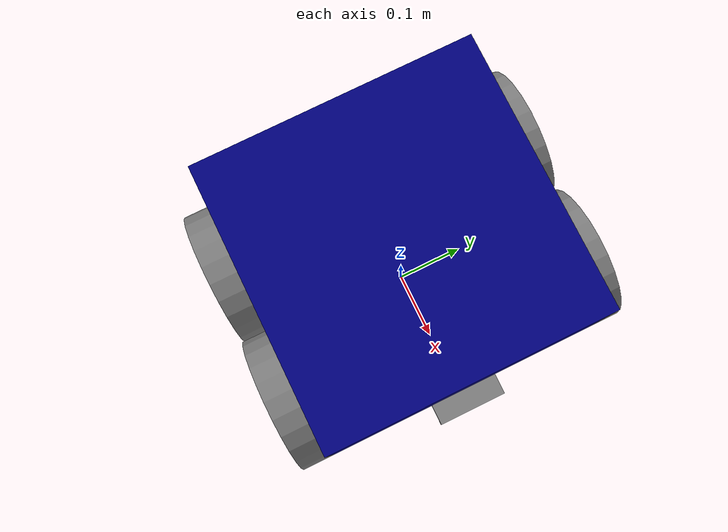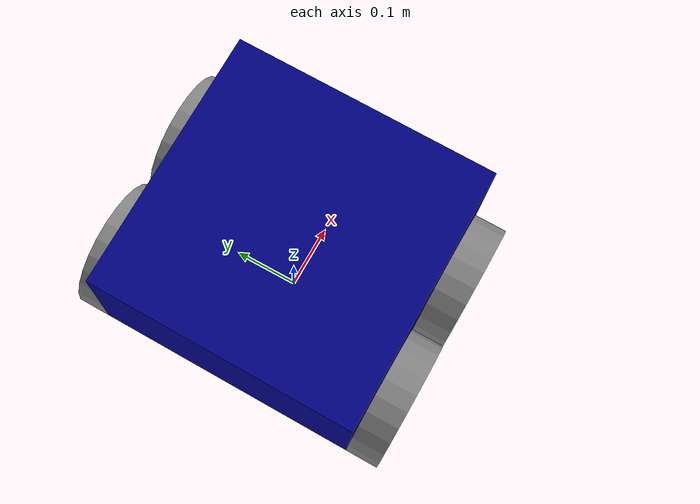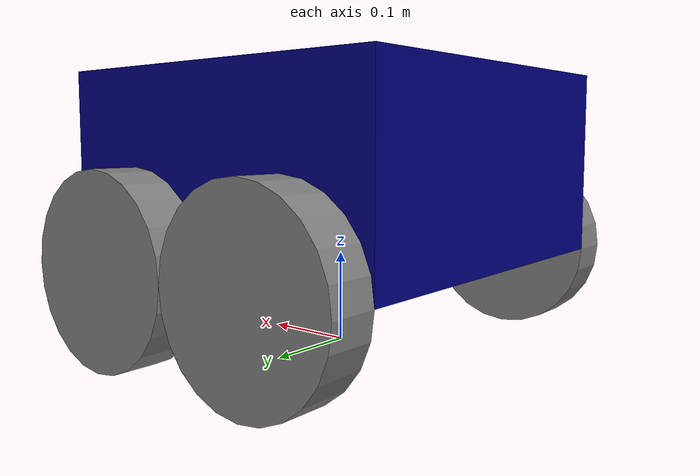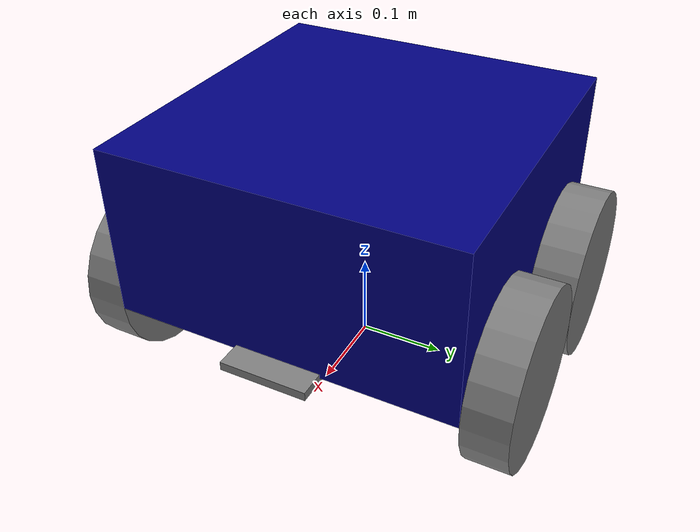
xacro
<?xml version="1.0"?>
<robot name="my_robot" xmlns:xacro="https://www.ros.org/wiki/xacro">
  <xacro:include filename="common_properties.xacro" />
  <xacro:include filename="mobile_base.xacro" />
  <xacro:include filename="mobile_base_gazebo.xacro" />
  <xacro:include filename="camera.xacro" />
</robot>

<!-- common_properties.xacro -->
<robot xmlns:xacro="https://www.ros.org/wiki/xacro">
    <material name="blue">
    <color rgba="0 0 0.5 1"/>
  </material>
  <material name="grey">
    <color rgba="0.5 0.5 0.5 1"/>
  </material>
  <xacro:macro name="box_inertia" params="m l w h xyz rpy">
    <inertial>
      <origin xyz="${xyz}" rpy="${rpy}" />
      <mass value="${m}"/>
      <inertia ixx="${(m/12)*(h*h + l*l)}" ixy="0" ixz="0"
               iyy="${(m/12)*(w*w + l*l)}" iyz="0"
               izz="${(m/12)*(w*w + h*h)}" />
      </inertial>
  </xacro:macro>
  <xacro:macro name="wheel_inertia" params="m l r xyz rpy">
    <inertial>
      <origin xyz="${xyz}" rpy="${rpy}" />
      <mass value="${m}"/>
      <inertia ixx="${(m/12)*(3*r*r + l*l)}" ixy="0" ixz="0"
               iyy="${(m/12)*(3*r*r + l*l)}" iyz="0"
               izz="${(m/12)*(3*r*r)}" />
      </inertial>
  </xacro:macro>
  <xacro:macro name="caster_wheel_inertia" params="m r xyz rpy">
    <inertial>
      <origin xyz="${xyz}" rpy="${rpy}" />
      <mass value="${m}"/>
      <inertia ixx="${(2/5)*m*(r*r)}" ixy="0" ixz="0"
               iyy="${(2/5)*m*(r*r)}" iyz="0"
               izz="${(2/5)*m*(r*r)}" />
      </inertial>
  </xacro:macro>
  <xacro:macro name="cylinder_inertia" params="m l r xyz rpy">
    <inertial>
      <origin xyz="${xyz}" rpy="${rpy}" />
      <mass value="${m}"/>
      <inertia ixx="${(m/12)*(3*r*r + l*l)}" ixy="0" ixz="0"
               iyy="${(m/12)*(3*r*r + l*l)}" iyz="0"
               izz="${(m/12)*(3*r*r)}" />
      </inertial>
  </xacro:macro>
  <xacro:macro name="jointlink_box_inertia" params="m l w h xyz rpy">
    <inertial>
      <origin xyz="${xyz}" rpy="${rpy}" />
      <mass value="${m}"/>
      <inertia ixx="${(m/12)*(h*h + l*l)}" ixy="0" ixz="0"
               iyy="${(m/12)*(w*w + l*l)}" iyz="0"
               izz="${(m/12)*(w*w + h*h)}" />
      </inertial>
  </xacro:macro>
</robot>

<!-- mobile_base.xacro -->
<robot xmlns:xacro="https://www.ros.org/wiki/xacro">
  <xacro:property name="base_length" value="0.4"/>
  <xacro:property name="base_width" value="0.4"/>
  <xacro:property name="base_height" value="0.2"/>
  <xacro:property name="wheel_radius" value="0.1"/>
  <xacro:property name="wheel_length" value="0.05"/>

  <link name="base_footprint" />
  <link name="base_link">
    <visual>
      <geometry>
        <box size="${base_length} ${base_width} ${base_height}"/>
      </geometry>
      <origin xyz="0 0 ${base_height/2.0}" rpy="0 0 0"/>
      <material name="blue"/>
    </visual>
    <collision>
      <geometry>
        <box size="${base_length} ${base_width} ${base_height}"/>
      </geometry>
      <origin xyz="0 0 ${base_height/2.0}" rpy="0 0 0"/>
    </collision>
    <xacro:box_inertia m="5.0" l="${base_length}" w="${base_width}" h="${base_height}"
                       xyz="0 0 ${base_height/2.0}" rpy="0 0 0" />
  </link>

  <xacro:macro name="wheel_link" params="prefix">
    <link name="${prefix}_wheel_link">
    <visual>
      <geometry>
        <cylinder radius="${wheel_radius}" length="${wheel_length}"/>
      </geometry>
      <origin xyz="0 0 0" rpy="0 0 0"/>
      <material name="grey"/>
    </visual>
    <collision>
      <geometry>
        <cylinder radius="${wheel_radius}" length="${wheel_length}"/>
      </geometry>
      <origin xyz="0 0 0" rpy="0 0 0"/>
    </collision>
    <xacro:wheel_inertia m="1.0" l="${wheel_length}" r="${wheel_radius}"
                       xyz="0 0 0" rpy="0 0 0" />
  </link>
  </xacro:macro>
  <xacro:wheel_link prefix="right" />
  <xacro:wheel_link prefix="left" />
  <xacro:wheel_link prefix="front_right" />
  <xacro:wheel_link prefix="front_left" />

  <joint name="base_joint" type="fixed">
    <parent link="base_footprint"/>
    <child link="base_link"/>
    <origin xyz="0 0 0.1" rpy="0 0 0"/>
  </joint>

  <joint name="base_right_wheel_joint" type="fixed">
    <parent link="base_link"/>
    <child link="right_wheel_link"/>
    <origin xyz="${base_length / 4.0} ${(base_width + wheel_length)/2.0} 0" rpy="${-pi / 2.0} 0 0"/>
    <axis xyz="0 0 1"/>
  </joint>
  <joint name="base_left_wheel_joint" type="fixed">
    <parent link="base_link"/>
    <child link="left_wheel_link"/>
    <origin xyz="${base_length / 4.0} ${-(base_width + wheel_length)/2.0} 0" rpy="${-pi / 2.0} 0 0"/>
    <axis xyz="0 0 1"/>
  </joint>
  <joint name="base_rightwheel_joint" type="continuous">
    <parent link="base_link"/>
    <child link="front_right_wheel_link"/>
    <origin xyz="${-base_length / 4.0} ${(base_width + wheel_length)/2.0} 0" rpy="${-pi / 2.0} 0 0"/>
    <axis xyz="0 0 1"/>
  </joint>
  <joint name="base_leftwheel_joint" type="continuous">
    <parent link="base_link"/>
    <child link="front_left_wheel_link"/>
    <origin xyz="${-base_length / 4.0} ${-(base_width + wheel_length)/2.0} 0" rpy="${-pi / 2.0} 0 0"/>
    <axis xyz="0 0 1"/>
  </joint>

</robot>

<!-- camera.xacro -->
<robot xmlns:xacro="https://www.ros.org/wiki/xacro">
  <xacro:property name="camera_length" value="0.01"/>
  <xacro:property name="camera_width" value="0.1"/>
  <xacro:property name="camera_height" value="0.05"/>
  <link name="camera_link" >
    <visual>
      <geometry>
        <box size="${camera_length} ${camera_width} ${camera_height}" />
      </geometry>
      <material name="grey"/>
    </visual>
    <collision>
      <geometry>
        <box size="${camera_length} ${camera_width} ${camera_height}" />
      </geometry>
    </collision>
    <xacro:box_inertia m="0.1" l="${camera_length}" w="${camera_width}" h="${camera_height}"
                       xyz="0 0 0" rpy="0 0 0" />
  </link>
  <joint name="base_camera_joint" type="fixed">
    <parent link="base_link"/>
    <child link="camera_link"/>
    <origin xyz="${(camera_length + base_length) /2} 0 0" rpy="0 1.57 0"/>
  </joint>

  <gazebo reference="camera_link">
  <sensor name="camera_sensor" type="camera">
    <pose>0 0 0 0 0 0</pose>
    <visualize>true</visualize>
    <update_rate>10.0</update_rate>

    <camera>
      <horizontal_fov>1.047</horizontal_fov>
      <image>
        <width>640</width>
        <height>480</height>
        <format>R8G8B8</format>
      </image>
      <clip>
        <near>0.01</near>
        <far>10.0</far>
      </clip>
    </camera>

    <plugin name="camera_controller" filename="libgazebo_ros_camera.so">
      <camera_name>camera</camera_name>
      <image_topic_name>image_raw</image_topic_name>
      <frame_name>camera_link</frame_name>
    </plugin>
  </sensor>
</gazebo>

</robot>
